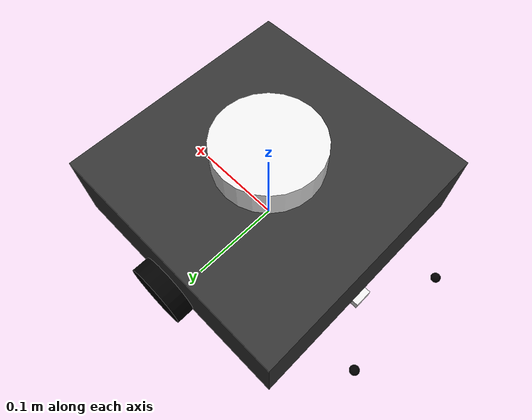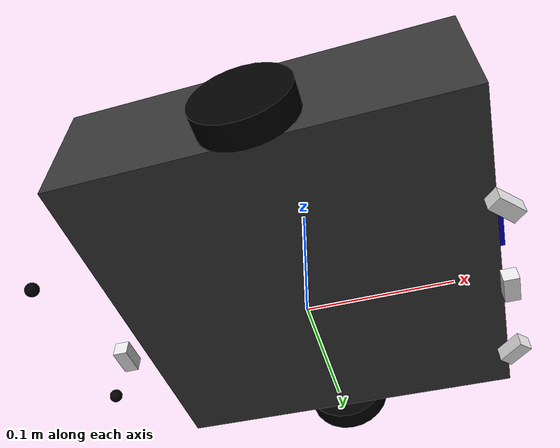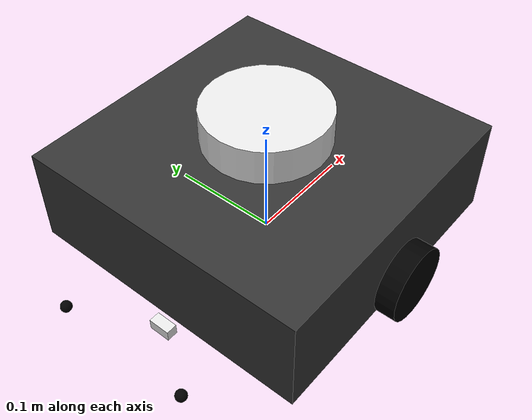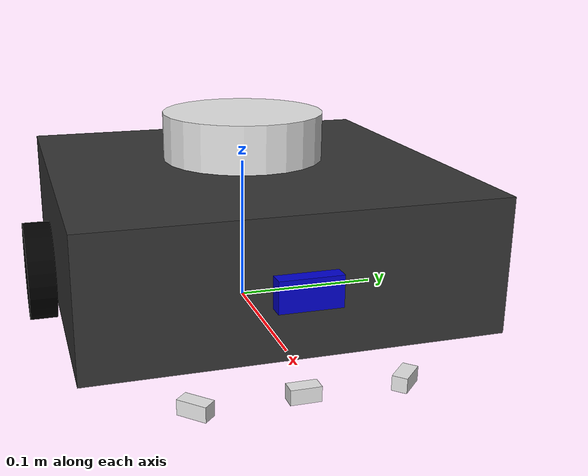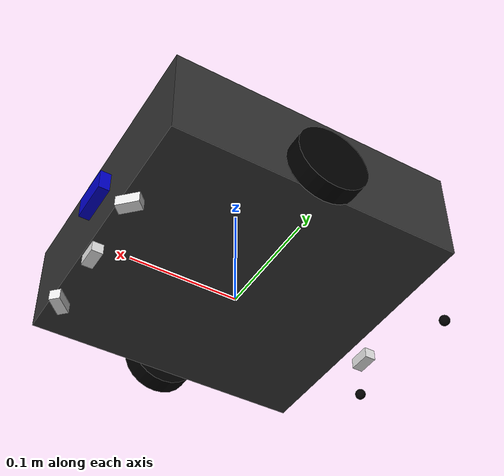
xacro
<?xml version="1.0"?>
<robot name="vacuum" xmlns:xacro="http://ros.org/wiki/xacro">

  <xacro:property name="base_length" value="0.266"/>
  <xacro:property name="base_width" value="0.266"/>
  <xacro:property name="base_height" value="0.089"/>
  <xacro:property name="wheel_radius" value="0.033"/>
  <xacro:property name="wheel_width" value="0.018"/>
  <xacro:property name="wheel_separation" value="0.287"/>
  <xacro:property name="lidar_range" value="3.5"/>
  <xacro:property name="camera_fov" value="1.085595"/>

  <material name="dark_gray">
    <color rgba="0.2 0.2 0.2 1.0"/>
  </material>
  <material name="black">
    <color rgba="0.0 0.0 0.0 1.0"/>
  </material>
  <material name="white">
    <color rgba="0.9 0.9 0.9 1.0"/>
  </material>
  <material name="blue">
    <color rgba="0.0 0.0 0.8 1.0"/>
  </material>

  <link name="base_footprint"/>

  <joint name="base_joint" type="fixed">
    <parent link="base_footprint"/>
    <child link="base_link"/>
    <origin xyz="0 0 0.010" rpy="0 0 0"/>
  </joint>

  <link name="base_link">
    <visual>
      <origin xyz="0 0 ${base_height/2}" rpy="0 0 0"/>
      <geometry>
        <box size="${base_length} ${base_width} ${base_height}"/>
      </geometry>
      <material name="dark_gray"/>
    </visual>
    <collision>
      <origin xyz="0 0 ${base_height/2}" rpy="0 0 0"/>
      <geometry>
        <box size="${base_length} ${base_width} ${base_height}"/>
      </geometry>
    </collision>
    <inertial>
      <mass value="2.0"/>
      <inertia ixx="0.0131" ixy="0" ixz="0" iyy="0.0131" iyz="0" izz="0.0236"/>
    </inertial>
  </link>

  <link name="left_wheel_link">
    <visual>
      <geometry>
        <cylinder radius="${wheel_radius}" length="${wheel_width}"/>
      </geometry>
      <material name="black"/>
      <origin xyz="0 0 0" rpy="${pi/2} 0 0"/>
    </visual>
    <collision>
      <geometry>
        <cylinder radius="${wheel_radius}" length="${wheel_width}"/>
      </geometry>
      <origin xyz="0 0 0" rpy="${pi/2} 0 0"/>
    </collision>
    <inertial>
      <mass value="0.0285"/>
      <inertia ixx="1.12e-5" ixy="0" ixz="0" iyy="1.12e-5" iyz="0" izz="2.07e-5"/>
    </inertial>
  </link>

  <joint name="left_wheel_joint" type="continuous">
    <parent link="base_link"/>
    <child link="left_wheel_link"/>
    <origin xyz="0 ${wheel_separation/2} 0.023" rpy="0 0 0"/>
    <axis xyz="0 1 0"/>
  </joint>

  <link name="right_wheel_link">
    <visual>
      <geometry>
        <cylinder radius="${wheel_radius}" length="${wheel_width}"/>
      </geometry>
      <material name="black"/>
      <origin xyz="0 0 0" rpy="${pi/2} 0 0"/>
    </visual>
    <collision>
      <geometry>
        <cylinder radius="${wheel_radius}" length="${wheel_width}"/>
      </geometry>
      <origin xyz="0 0 0" rpy="${pi/2} 0 0"/>
    </collision>
    <inertial>
      <mass value="0.0285"/>
      <inertia ixx="1.12e-5" ixy="0" ixz="0" iyy="1.12e-5" iyz="0" izz="2.07e-5"/>
    </inertial>
  </link>

  <joint name="right_wheel_joint" type="continuous">
    <parent link="base_link"/>
    <child link="right_wheel_link"/>
    <origin xyz="0 -${wheel_separation/2} 0.023" rpy="0 0 0"/>
    <axis xyz="0 1 0"/>
  </joint>

  <link name="caster_back_right_link">
    <visual>
      <geometry>
        <sphere radius="0.005"/>
      </geometry>
      <material name="black"/>
    </visual>
    <collision>
      <geometry>
        <sphere radius="0.005"/>
      </geometry>
    </collision>
    <inertial>
      <mass value="0.005"/>
      <inertia ixx="1e-5" ixy="0" ixz="0" iyy="1e-5" iyz="0" izz="1e-5"/>
    </inertial>
  </link>
  <joint name="caster_back_right_joint" type="fixed">
    <parent link="base_link"/>
    <child link="caster_back_right_link"/>
    <origin xyz="-0.177 -0.064 -0.004" rpy="0 0 0"/>
  </joint>

  <link name="caster_back_left_link">
    <visual>
      <geometry>
        <sphere radius="0.005"/>
      </geometry>
      <material name="black"/>
    </visual>
    <collision>
      <geometry>
        <sphere radius="0.005"/>
      </geometry>
    </collision>
    <inertial>
      <mass value="0.005"/>
      <inertia ixx="1e-5" ixy="0" ixz="0" iyy="1e-5" iyz="0" izz="1e-5"/>
    </inertial>
  </link>
  <joint name="caster_back_left_joint" type="fixed">
    <parent link="base_link"/>
    <child link="caster_back_left_link"/>
    <origin xyz="-0.177 0.064 -0.004" rpy="0 0 0"/>
  </joint>

  <link name="imu_link"/>
  <joint name="imu_joint" type="fixed">
    <parent link="base_link"/>
    <child link="imu_link"/>
    <origin xyz="0 0 0.068" rpy="0 0 0"/>
  </joint>

  <link name="lidar_link">
    <visual>
      <geometry>
        <cylinder radius="0.055" length="0.032"/>
      </geometry>
      <material name="white"/>
    </visual>
    <collision>
      <geometry>
        <cylinder radius="0.055" length="0.032"/>
      </geometry>
    </collision>
    <inertial>
      <mass value="0.114"/>
      <inertia ixx="0.001" ixy="0" ixz="0" iyy="0.001" iyz="0" izz="0.001"/>
    </inertial>
  </link>
  <joint name="lidar_joint" type="fixed">
    <parent link="base_link"/>
    <child link="lidar_link"/>
    <origin xyz="0 0 ${base_height + 0.02}" rpy="0 0 0"/>
  </joint>

  <link name="camera_link">
    <visual>
      <geometry>
        <box size="0.02 0.04 0.02"/>
      </geometry>
      <material name="blue"/>
    </visual>
    <collision>
      <geometry>
        <box size="0.02 0.04 0.02"/>
      </geometry>
    </collision>
    <inertial>
      <mass value="0.01"/>
      <inertia ixx="1e-5" ixy="0" ixz="0" iyy="1e-5" iyz="0" izz="1e-5"/>
    </inertial>
  </link>
  <joint name="camera_joint" type="fixed">
    <parent link="base_link"/>
    <child link="camera_link"/>
    <origin xyz="${base_length/2} 0 ${base_height/2}" rpy="0 0 0"/>
  </joint>

  <link name="ultrasonic_front_center_link">
    <visual>
      <geometry>
        <box size="0.01 0.02 0.01"/>
      </geometry>
      <material name="white"/>
    </visual>
  </link>
  <joint name="ultrasonic_front_center_joint" type="fixed">
    <parent link="base_link"/>
    <child link="ultrasonic_front_center_link"/>
    <origin xyz="${base_length/2} 0 ${-base_height/4}" rpy="0 0 0"/>
  </joint>

  <link name="ultrasonic_front_left_link">
    <visual>
      <geometry>
        <box size="0.01 0.02 0.01"/>
      </geometry>
      <material name="white"/>
    </visual>
  </link>
  <joint name="ultrasonic_front_left_joint" type="fixed">
    <parent link="base_link"/>
    <child link="ultrasonic_front_left_link"/>
    <origin xyz="${base_length/2} ${base_width/4} ${-base_height/4}" rpy="0 0 0.785"/>
  </joint>

  <link name="ultrasonic_front_right_link">
    <visual>
      <geometry>
        <box size="0.01 0.02 0.01"/>
      </geometry>
      <material name="white"/>
    </visual>
  </link>
  <joint name="ultrasonic_front_right_joint" type="fixed">
    <parent link="base_link"/>
    <child link="ultrasonic_front_right_link"/>
    <origin xyz="${base_length/2} -${base_width/4} ${-base_height/4}" rpy="0 0 -0.785"/>
  </joint>

  <link name="ultrasonic_rear_link">
    <visual>
      <geometry>
        <box size="0.01 0.02 0.01"/>
      </geometry>
      <material name="white"/>
    </visual>
  </link>
  <joint name="ultrasonic_rear_joint" type="fixed">
    <parent link="base_link"/>
    <child link="ultrasonic_rear_link"/>
    <origin xyz="${-base_length/2} 0 ${-base_height/4}" rpy="0 0 ${pi}"/>
  </joint>

  <xacro:include filename="$(find vacuum_description)/urdf/vacuum.gazebo.xacro"/>

</robot>
